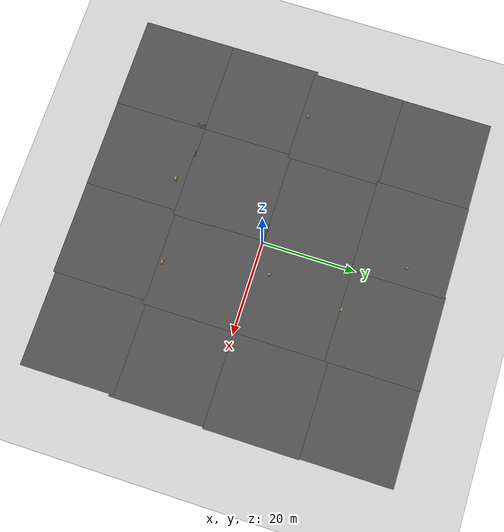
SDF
<sdf version="1.7">
 <world name="default">
  <light name="sun" type="directional">
   <pose>0 0 10 0 -0 0</pose>
   <diffuse>0.8 0.8 0.8 1</diffuse>
   <specular>0.2 0.2 0.2 1</specular>
   <attenuation>
    <range>1000</range>
    <constant>0.9</constant>
    <linear>0.01</linear>
    <quadratic>0.001</quadratic>
   </attenuation>
   <direction>-0.5 0.1 -0.9</direction>
   <spot><inner_angle>0</inner_angle><outer_angle>0</outer_angle><falloff>0</falloff></spot>
  </light>
  <model name="ground_plane">
   <static>1</static>
   <link name="link">
    <collision name="collision">
     <geometry><plane><normal>0 0 1</normal><size>100 100</size></plane></geometry>
     <surface>
      <contact><collide_bitmask>65535</collide_bitmask></contact>
      <friction><ode><mu>100</mu><mu2>50</mu2></ode></friction>
     </surface>
    </collision>
    <visual name="visual">
     <cast_shadows>0</cast_shadows>
     <geometry><plane><normal>0 0 1</normal><size>100 100</size></plane></geometry>
     <material>
      <script><uri>file://media/materials/scripts/gazebo.material</uri><name>Gazebo/Grey</name></script>
     </material>
    </visual>
   </link>
  </model>
  <gravity>0 0 -9.8</gravity>
  <magnetic_field>6e-06 2.3e-05 -4.2e-05</magnetic_field>
  <atmosphere type="adiabatic"/>
  <physics type="ode">
   <max_step_size>0.001</max_step_size>
   <real_time_factor>1</real_time_factor>
   <real_time_update_rate>1000</real_time_update_rate>
  </physics>
  <scene><ambient>0.4 0.4 0.4 1</ambient><background>0.7 0.7 0.7 1</background><shadows>1</shadows></scene>
  <audio><device>default</device></audio>
  <spherical_coordinates>
   <surface_model>EARTH_WGS84</surface_model>
   <latitude_deg>0</latitude_deg>
   <longitude_deg>0</longitude_deg>
   <elevation>0</elevation>
   <heading_deg>0</heading_deg>
  </spherical_coordinates>
  <model name="asphalt_plane">
   <static>1</static>
   <link name="link">
    <collision name="collision"><geometry><box><size>20 20 0.1</size></box></geometry></collision>
    <visual name="visual">
     <cast_shadows>0</cast_shadows>
     <geometry><box><size>20 20 0.1</size></box></geometry>
     <material>
      <script>
       <uri>model://asphalt_plane/materials/scripts</uri>
       <uri>model://asphalt_plane/materials/textures</uri>
       <name>vrc/asphalt</name>
      </script>
     </material>
    </visual>
   </link>
   <pose>-10.1429 10.0672 0 0 -0 0</pose>
  </model>
  <model name="asphalt_plane_0">
   <static>1</static>
   <link name="link">
    <collision name="collision"><geometry><box><size>20 20 0.1</size></box></geometry></collision>
    <visual name="visual">
     <cast_shadows>0</cast_shadows>
     <geometry><box><size>20 20 0.1</size></box></geometry>
     <material>
      <script>
       <uri>model://asphalt_plane/materials/scripts</uri>
       <uri>model://asphalt_plane/materials/textures</uri>
       <name>vrc/asphalt</name>
      </script>
     </material>
    </visual>
   </link>
   <pose>9.66493 10.0332 0 0 -0 0</pose>
  </model>
  <model name="asphalt_plane_1">
   <static>1</static>
   <link name="link">
    <collision name="collision"><geometry><box><size>20 20 0.1</size></box></geometry></collision>
    <visual name="visual">
     <cast_shadows>0</cast_shadows>
     <geometry><box><size>20 20 0.1</size></box></geometry>
     <material>
      <script>
       <uri>model://asphalt_plane/materials/scripts</uri>
       <uri>model://asphalt_plane/materials/textures</uri>
       <name>vrc/asphalt</name>
      </script>
     </material>
    </visual>
   </link>
   <pose>-10.2318 -9.7372 0 0 -0 0</pose>
  </model>
  <model name="asphalt_plane_2">
   <static>1</static>
   <link name="link">
    <collision name="collision"><geometry><box><size>20 20 0.1</size></box></geometry></collision>
    <visual name="visual">
     <cast_shadows>0</cast_shadows>
     <geometry><box><size>20 20 0.1</size></box></geometry>
     <material>
      <script>
       <uri>model://asphalt_plane/materials/scripts</uri>
       <uri>model://asphalt_plane/materials/textures</uri>
       <name>vrc/asphalt</name>
      </script>
     </material>
    </visual>
   </link>
   <pose>9.5567 -9.75813 0 0 -0 0</pose>
  </model>
  <model name="asphalt_plane_2_clone">
   <static>1</static>
   <link name="link">
    <collision name="collision"><geometry><box><size>20 20 0.1</size></box></geometry></collision>
    <visual name="visual">
     <cast_shadows>0</cast_shadows>
     <geometry><box><size>20 20 0.1</size></box></geometry>
     <material>
      <script>
       <uri>model://asphalt_plane/materials/scripts</uri>
       <uri>model://asphalt_plane/materials/textures</uri>
       <name>vrc/asphalt</name>
      </script>
     </material>
    </visual>
   </link>
   <pose>29.5188 10.0517 0 0 -0 0</pose>
  </model>
  <model name="asphalt_plane_2_clone_0">
   <static>1</static>
   <link name="link">
    <collision name="collision"><geometry><box><size>20 20 0.1</size></box></geometry></collision>
    <visual name="visual">
     <cast_shadows>0</cast_shadows>
     <geometry><box><size>20 20 0.1</size></box></geometry>
     <material>
      <script>
       <uri>model://asphalt_plane/materials/scripts</uri>
       <uri>model://asphalt_plane/materials/textures</uri>
       <name>vrc/asphalt</name>
      </script>
     </material>
    </visual>
   </link>
   <pose>29.2013 -9.82994 0 0 -0 0</pose>
  </model>
  <model name="asphalt_plane_2_clone_1">
   <static>1</static>
   <link name="link">
    <collision name="collision"><geometry><box><size>20 20 0.1</size></box></geometry></collision>
    <visual name="visual">
     <cast_shadows>0</cast_shadows>
     <geometry><box><size>20 20 0.1</size></box></geometry>
     <material>
      <script>
       <uri>model://asphalt_plane/materials/scripts</uri>
       <uri>model://asphalt_plane/materials/textures</uri>
       <name>vrc/asphalt</name>
      </script>
     </material>
    </visual>
   </link>
   <pose>29.307 29.2309 0 0 -0 0</pose>
  </model>
  <model name="asphalt_plane_2_clone_2">
   <static>1</static>
   <link name="link">
    <collision name="collision"><geometry><box><size>20 20 0.1</size></box></geometry></collision>
    <visual name="visual">
     <cast_shadows>0</cast_shadows>
     <geometry><box><size>20 20 0.1</size></box></geometry>
     <material>
      <script>
       <uri>model://asphalt_plane/materials/scripts</uri>
       <uri>model://asphalt_plane/materials/textures</uri>
       <name>vrc/asphalt</name>
      </script>
     </material>
    </visual>
   </link>
   <pose>9.53744 29.3086 0 0 -0 0</pose>
  </model>
  <model name="asphalt_plane_2_clone_3">
   <static>1</static>
   <link name="link">
    <collision name="collision"><geometry><box><size>20 20 0.1</size></box></geometry></collision>
    <visual name="visual">
     <cast_shadows>0</cast_shadows>
     <geometry><box><size>20 20 0.1</size></box></geometry>
     <material>
      <script>
       <uri>model://asphalt_plane/materials/scripts</uri>
       <uri>model://asphalt_plane/materials/textures</uri>
       <name>vrc/asphalt</name>
      </script>
     </material>
    </visual>
   </link>
   <pose>-10.0436 29.1286 0 0 -0 0</pose>
  </model>
  <model name="asphalt_plane_2_clone_4">
   <static>1</static>
   <link name="link">
    <collision name="collision"><geometry><box><size>20 20 0.1</size></box></geometry></collision>
    <visual name="visual">
     <cast_shadows>0</cast_shadows>
     <geometry><box><size>20 20 0.1</size></box></geometry>
     <material>
      <script>
       <uri>model://asphalt_plane/materials/scripts</uri>
       <uri>model://asphalt_plane/materials/textures</uri>
       <name>vrc/asphalt</name>
      </script>
     </material>
    </visual>
   </link>
   <pose>-29.4342 29.0409 0 0 -0 0</pose>
  </model>
  <model name="asphalt_plane_2_clone_5">
   <static>1</static>
   <link name="link">
    <collision name="collision"><geometry><box><size>20 20 0.1</size></box></geometry></collision>
    <visual name="visual">
     <cast_shadows>0</cast_shadows>
     <geometry><box><size>20 20 0.1</size></box></geometry>
     <material>
      <script>
       <uri>model://asphalt_plane/materials/scripts</uri>
       <uri>model://asphalt_plane/materials/textures</uri>
       <name>vrc/asphalt</name>
      </script>
     </material>
    </visual>
   </link>
   <pose>-29.4889 9.45059 0 0 -0 0</pose>
  </model>
  <model name="asphalt_plane_2_clone_6">
   <static>1</static>
   <link name="link">
    <collision name="collision"><geometry><box><size>20 20 0.1</size></box></geometry></collision>
    <visual name="visual">
     <cast_shadows>0</cast_shadows>
     <geometry><box><size>20 20 0.1</size></box></geometry>
     <material>
      <script>
       <uri>model://asphalt_plane/materials/scripts</uri>
       <uri>model://asphalt_plane/materials/textures</uri>
       <name>vrc/asphalt</name>
      </script>
     </material>
    </visual>
   </link>
   <pose>-30.2078 -9.94584 0 0 -0 0</pose>
  </model>
  <model name="asphalt_plane_2_clone_7">
   <static>1</static>
   <link name="link">
    <collision name="collision"><geometry><box><size>20 20 0.1</size></box></geometry></collision>
    <visual name="visual">
     <cast_shadows>0</cast_shadows>
     <geometry><box><size>20 20 0.1</size></box></geometry>
     <material>
      <script>
       <uri>model://asphalt_plane/materials/scripts</uri>
       <uri>model://asphalt_plane/materials/textures</uri>
       <name>vrc/asphalt</name>
      </script>
     </material>
    </visual>
   </link>
   <pose>-30.2223 -29.4366 0 0 -0 0</pose>
  </model>
  <model name="asphalt_plane_2_clone_8">
   <static>1</static>
   <link name="link">
    <collision name="collision"><geometry><box><size>20 20 0.1</size></box></geometry></collision>
    <visual name="visual">
     <cast_shadows>0</cast_shadows>
     <geometry><box><size>20 20 0.1</size></box></geometry>
     <material>
      <script>
       <uri>model://asphalt_plane/materials/scripts</uri>
       <uri>model://asphalt_plane/materials/textures</uri>
       <name>vrc/asphalt</name>
      </script>
     </material>
    </visual>
   </link>
   <pose>-11.1212 -29.3948 0 0 -0 0</pose>
  </model>
  <model name="asphalt_plane_2_clone_9">
   <static>1</static>
   <link name="link">
    <collision name="collision"><geometry><box><size>20 20 0.1</size></box></geometry></collision>
    <visual name="visual">
     <cast_shadows>0</cast_shadows>
     <geometry><box><size>20 20 0.1</size></box></geometry>
     <material>
      <script>
       <uri>model://asphalt_plane/materials/scripts</uri>
       <uri>model://asphalt_plane/materials/textures</uri>
       <name>vrc/asphalt</name>
      </script>
     </material>
    </visual>
   </link>
   <pose>8.77622 -29.3589 0 0 -0 0</pose>
  </model>
  <model name="asphalt_plane_2_clone_10">
   <static>1</static>
   <link name="link">
    <collision name="collision"><geometry><box><size>20 20 0.1</size></box></geometry></collision>
    <visual name="visual">
     <cast_shadows>0</cast_shadows>
     <geometry><box><size>20 20 0.1</size></box></geometry>
     <material>
      <script>
       <uri>model://asphalt_plane/materials/scripts</uri>
       <uri>model://asphalt_plane/materials/textures</uri>
       <name>vrc/asphalt</name>
      </script>
     </material>
    </visual>
   </link>
   <pose>28.7222 -28.8999 0 0 -0 0</pose>
  </model>
  <model name="cabinet">
   <static>1</static>
   <link name="cabinet_bottom_plate">
    <inertial>
     <pose>0 0 -1 0 -0 0</pose>
     <inertia><ixx>2.05</ixx><ixy>0</ixy><ixz>0</ixz><iyy>2.05</iyy><iyz>0</iyz><izz>2.05</izz></inertia>
     <mass>25</mass>
    </inertial>
    <collision name="cabinet_bottom_plate_geom">
     <pose>0 0 0.01 0 -0 0</pose>
     <geometry><box><size>0.45 0.45 0.02</size></box></geometry>
    </collision>
    <visual name="cabinet_bottom_plate_geom_visual">
     <pose>0 0 0.01 0 -0 0</pose>
     <geometry><box><size>0.45 0.45 0.02</size></box></geometry>
     <material>
      <script><uri>file://media/materials/scripts/gazebo.material</uri><name>Gazebo/Wood</name></script>
     </material>
    </visual>
    <collision name="cabinet_bottom_plate_geom_cabinet_back_plate">
     <pose>0.235 0 0.51 0 -0 0</pose>
     <geometry><box><size>0.02 0.45 1.02</size></box></geometry>
    </collision>
    <visual name="cabinet_bottom_plate_geom_cabinet_back_plate_visual">
     <pose>0.235 0 0.51 0 -0 0</pose>
     <geometry><box><size>0.02 0.45 1.02</size></box></geometry>
     <material>
      <script><uri>file://media/materials/scripts/gazebo.material</uri><name>Gazebo/Wood</name></script>
     </material>
    </visual>
    <collision name="cabinet_bottom_plate_geom_cabinet_left_plate">
     <pose>0 0.235 0.51 0 -0 0</pose>
     <geometry><box><size>0.45 0.02 1.02</size></box></geometry>
    </collision>
    <visual name="cabinet_bottom_plate_geom_cabinet_left_plate_visual">
     <pose>0 0.235 0.51 0 -0 0</pose>
     <geometry><box><size>0.45 0.02 1.02</size></box></geometry>
     <material>
      <script><uri>file://media/materials/scripts/gazebo.material</uri><name>Gazebo/Wood</name></script>
     </material>
    </visual>
    <collision name="cabinet_bottom_plate_geom_cabinet_middle_plate">
     <pose>0 0 0.51 0 -0 0</pose>
     <geometry><box><size>0.45 0.45 0.02</size></box></geometry>
    </collision>
    <visual name="cabinet_bottom_plate_geom_cabinet_middle_plate_visual">
     <pose>0 0 0.51 0 -0 0</pose>
     <geometry><box><size>0.45 0.45 0.02</size></box></geometry>
     <material>
      <script><uri>file://media/materials/scripts/gazebo.material</uri><name>Gazebo/Wood</name></script>
     </material>
    </visual>
    <collision name="cabinet_bottom_plate_geom_cabinet_right_plate">
     <pose>0 -0.235 0.51 0 -0 0</pose>
     <geometry><box><size>0.45 0.02 1.02</size></box></geometry>
    </collision>
    <visual name="cabinet_bottom_plate_geom_cabinet_right_plate_visual">
     <pose>0 -0.235 0.51 0 -0 0</pose>
     <geometry><box><size>0.45 0.02 1.02</size></box></geometry>
     <material>
      <script><uri>file://media/materials/scripts/gazebo.material</uri><name>Gazebo/Wood</name></script>
     </material>
    </visual>
    <collision name="cabinet_bottom_plate_geom_cabinet_top_plate">
     <pose>0 0 1.01 0 -0 0</pose>
     <geometry><box><size>0.45 0.45 0.02</size></box></geometry>
    </collision>
    <visual name="cabinet_bottom_plate_geom_cabinet_top_plate_visual">
     <pose>0 0 1.01 0 -0 0</pose>
     <geometry><box><size>0.45 0.45 0.02</size></box></geometry>
     <material>
      <script><uri>file://media/materials/scripts/gazebo.material</uri><name>Gazebo/Wood</name></script>
     </material>
    </visual>
   </link>
   <pose>-3.79659 29.9109 0 0 -0 0</pose>
  </model>
  <model name="beer">
   <link name="link">
    <pose>0 0 0.115 0 -0 0</pose>
    <inertial>
     <mass>0.39</mass>
     <inertia><ixx>0.00058</ixx><ixy>0</ixy><ixz>0</ixz><iyy>0.00058</iyy><iyz>0</iyz><izz>0.00019</izz></inertia>
    </inertial>
    <collision name="collision">
     <geometry><cylinder><radius>0.055</radius><length>0.23</length></cylinder></geometry>
    </collision>
    <visual name="visual">
     <geometry><cylinder><radius>0.055</radius><length>0.23</length></cylinder></geometry>
     <material>
      <script>
       <uri>model://beer/materials/scripts</uri>
       <uri>model://beer/materials/textures</uri>
       <name>Beer/Diffuse</name>
      </script>
     </material>
    </visual>
   </link>
   <pose>-19.0994 12.8876 0.050003 1e-05 4.8e-05 -0.000266</pose>
  </model>
  <model name="beer_0">
   <link name="link">
    <pose>0 0 0.115 0 -0 0</pose>
    <inertial>
     <mass>0.39</mass>
     <inertia><ixx>0.00058</ixx><ixy>0</ixy><ixz>0</ixz><iyy>0.00058</iyy><iyz>0</iyz><izz>0.00019</izz></inertia>
    </inertial>
    <collision name="collision">
     <geometry><cylinder><radius>0.055</radius><length>0.23</length></cylinder></geometry>
    </collision>
    <visual name="visual">
     <geometry><cylinder><radius>0.055</radius><length>0.23</length></cylinder></geometry>
     <material>
      <script>
       <uri>model://beer/materials/scripts</uri>
       <uri>model://beer/materials/textures</uri>
       <name>Beer/Diffuse</name>
      </script>
     </material>
    </visual>
   </link>
   <pose>18.749 11.8749 0.049992 -8e-06 3.3e-05 0.001539</pose>
  </model>
  <model name="cabinet_0">
   <static>1</static>
   <link name="cabinet_bottom_plate">
    <inertial>
     <pose>0 0 -1 0 -0 0</pose>
     <inertia><ixx>2.05</ixx><ixy>0</ixy><ixz>0</ixz><iyy>2.05</iyy><iyz>0</iyz><izz>2.05</izz></inertia>
     <mass>25</mass>
    </inertial>
    <collision name="cabinet_bottom_plate_geom">
     <pose>0 0 0.01 0 -0 0</pose>
     <geometry><box><size>0.45 0.45 0.02</size></box></geometry>
    </collision>
    <visual name="cabinet_bottom_plate_geom_visual">
     <pose>0 0 0.01 0 -0 0</pose>
     <geometry><box><size>0.45 0.45 0.02</size></box></geometry>
     <material>
      <script><uri>file://media/materials/scripts/gazebo.material</uri><name>Gazebo/Wood</name></script>
     </material>
    </visual>
    <collision name="cabinet_bottom_plate_geom_cabinet_back_plate">
     <pose>0.235 0 0.51 0 -0 0</pose>
     <geometry><box><size>0.02 0.45 1.02</size></box></geometry>
    </collision>
    <visual name="cabinet_bottom_plate_geom_cabinet_back_plate_visual">
     <pose>0.235 0 0.51 0 -0 0</pose>
     <geometry><box><size>0.02 0.45 1.02</size></box></geometry>
     <material>
      <script><uri>file://media/materials/scripts/gazebo.material</uri><name>Gazebo/Wood</name></script>
     </material>
    </visual>
    <collision name="cabinet_bottom_plate_geom_cabinet_left_plate">
     <pose>0 0.235 0.51 0 -0 0</pose>
     <geometry><box><size>0.45 0.02 1.02</size></box></geometry>
    </collision>
    <visual name="cabinet_bottom_plate_geom_cabinet_left_plate_visual">
     <pose>0 0.235 0.51 0 -0 0</pose>
     <geometry><box><size>0.45 0.02 1.02</size></box></geometry>
     <material>
      <script><uri>file://media/materials/scripts/gazebo.material</uri><name>Gazebo/Wood</name></script>
     </material>
    </visual>
    <collision name="cabinet_bottom_plate_geom_cabinet_middle_plate">
     <pose>0 0 0.51 0 -0 0</pose>
     <geometry><box><size>0.45 0.45 0.02</size></box></geometry>
    </collision>
    <visual name="cabinet_bottom_plate_geom_cabinet_middle_plate_visual">
     <pose>0 0 0.51 0 -0 0</pose>
     <geometry><box><size>0.45 0.45 0.02</size></box></geometry>
     <material>
      <script><uri>file://media/materials/scripts/gazebo.material</uri><name>Gazebo/Wood</name></script>
     </material>
    </visual>
    <collision name="cabinet_bottom_plate_geom_cabinet_right_plate">
     <pose>0 -0.235 0.51 0 -0 0</pose>
     <geometry><box><size>0.45 0.02 1.02</size></box></geometry>
    </collision>
    <visual name="cabinet_bottom_plate_geom_cabinet_right_plate_visual">
     <pose>0 -0.235 0.51 0 -0 0</pose>
     <geometry><box><size>0.45 0.02 1.02</size></box></geometry>
     <material>
      <script><uri>file://media/materials/scripts/gazebo.material</uri><name>Gazebo/Wood</name></script>
     </material>
    </visual>
    <collision name="cabinet_bottom_plate_geom_cabinet_top_plate">
     <pose>0 0 1.01 0 -0 0</pose>
     <geometry><box><size>0.45 0.45 0.02</size></box></geometry>
    </collision>
    <visual name="cabinet_bottom_plate_geom_cabinet_top_plate_visual">
     <pose>0 0 1.01 0 -0 0</pose>
     <geometry><box><size>0.45 0.45 0.02</size></box></geometry>
     <material>
      <script><uri>file://media/materials/scripts/gazebo.material</uri><name>Gazebo/Wood</name></script>
     </material>
    </visual>
   </link>
   <pose>-29.4219 0.950964 0 0 -0 0</pose>
  </model>
  <model name="bookshelf">
   <static>1</static>
   <link name="link">
    <inertial><mass>1</mass></inertial>
    <collision name="back">
     <pose>0 0.005 0.6 0 -0 0</pose>
     <geometry><box><size>0.9 0.01 1.2</size></box></geometry>
    </collision>
    <visual name="visual1">
     <pose>0 0.005 0.6 0 -0 0</pose>
     <geometry><box><size>0.9 0.01 1.2</size></box></geometry>
     <material>
      <script><uri>file://media/materials/scripts/gazebo.material</uri><name>Gazebo/Wood</name></script>
     </material>
    </visual>
    <collision name="left_side">
     <pose>0.45 -0.195 0.6 0 -0 0</pose>
     <geometry><box><size>0.02 0.4 1.2</size></box></geometry>
    </collision>
    <visual name="visual2">
     <pose>0.45 -0.195 0.6 0 -0 0</pose>
     <geometry><box><size>0.02 0.4 1.2</size></box></geometry>
     <material>
      <script><uri>file://media/materials/scripts/gazebo.material</uri><name>Gazebo/Wood</name></script>
     </material>
    </visual>
    <collision name="right_side">
     <pose>-0.45 -0.195 0.6 0 -0 0</pose>
     <geometry><box><size>0.02 0.4 1.2</size></box></geometry>
    </collision>
    <visual name="visual3">
     <pose>-0.45 -0.195 0.6 0 -0 0</pose>
     <geometry><box><size>0.02 0.4 1.2</size></box></geometry>
     <material>
      <script><uri>file://media/materials/scripts/gazebo.material</uri><name>Gazebo/Wood</name></script>
     </material>
    </visual>
    <collision name="bottom">
     <pose>0 -0.195 0.03 0 -0 0</pose>
     <geometry><box><size>0.88 0.4 0.06</size></box></geometry>
    </collision>
    <visual name="visual4">
     <pose>0 -0.195 0.03 0 -0 0</pose>
     <geometry><box><size>0.88 0.4 0.06</size></box></geometry>
     <material>
      <script><uri>file://media/materials/scripts/gazebo.material</uri><name>Gazebo/Wood</name></script>
     </material>
    </visual>
    <collision name="top">
     <pose>0 -0.195 1.19 0 -0 0</pose>
     <geometry><box><size>0.88 0.4 0.02</size></box></geometry>
    </collision>
    <visual name="visual5">
     <pose>0 -0.195 1.19 0 -0 0</pose>
     <geometry><box><size>0.88 0.4 0.02</size></box></geometry>
     <material>
      <script><uri>file://media/materials/scripts/gazebo.material</uri><name>Gazebo/Wood</name></script>
     </material>
    </visual>
    <collision name="low_shelf">
     <pose>0 -0.195 0.43 0 -0 0</pose>
     <geometry><box><size>0.88 0.4 0.02</size></box></geometry>
    </collision>
    <visual name="visual6">
     <pose>0 -0.195 0.43 0 -0 0</pose>
     <geometry><box><size>0.88 0.4 0.02</size></box></geometry>
     <material>
      <script><uri>file://media/materials/scripts/gazebo.material</uri><name>Gazebo/Wood</name></script>
     </material>
    </visual>
    <collision name="high_shelf">
     <pose>0 -0.195 0.8 0 -0 0</pose>
     <geometry><box><size>0.88 0.4 0.02</size></box></geometry>
    </collision>
    <visual name="visual7">
     <pose>0 -0.195 0.8 0 -0 0</pose>
     <geometry><box><size>0.88 0.4 0.02</size></box></geometry>
     <material>
      <script><uri>file://media/materials/scripts/gazebo.material</uri><name>Gazebo/Wood</name></script>
     </material>
    </visual>
   </link>
   <pose>-7.67032 -21.4428 0 0 -0 0</pose>
  </model>
  <model name="bookshelf_0">
   <static>1</static>
   <link name="link">
    <inertial><mass>1</mass></inertial>
    <collision name="back">
     <pose>0 0.005 0.6 0 -0 0</pose>
     <geometry><box><size>0.9 0.01 1.2</size></box></geometry>
    </collision>
    <visual name="visual1">
     <pose>0 0.005 0.6 0 -0 0</pose>
     <geometry><box><size>0.9 0.01 1.2</size></box></geometry>
     <material>
      <script><uri>file://media/materials/scripts/gazebo.material</uri><name>Gazebo/Wood</name></script>
     </material>
    </visual>
    <collision name="left_side">
     <pose>0.45 -0.195 0.6 0 -0 0</pose>
     <geometry><box><size>0.02 0.4 1.2</size></box></geometry>
    </collision>
    <visual name="visual2">
     <pose>0.45 -0.195 0.6 0 -0 0</pose>
     <geometry><box><size>0.02 0.4 1.2</size></box></geometry>
     <material>
      <script><uri>file://media/materials/scripts/gazebo.material</uri><name>Gazebo/Wood</name></script>
     </material>
    </visual>
    <collision name="right_side">
     <pose>-0.45 -0.195 0.6 0 -0 0</pose>
     <geometry><box><size>0.02 0.4 1.2</size></box></geometry>
    </collision>
    <visual name="visual3">
     <pose>-0.45 -0.195 0.6 0 -0 0</pose>
     <geometry><box><size>0.02 0.4 1.2</size></box></geometry>
     <material>
      <script><uri>file://media/materials/scripts/gazebo.material</uri><name>Gazebo/Wood</name></script>
     </material>
    </visual>
    <collision name="bottom">
     <pose>0 -0.195 0.03 0 -0 0</pose>
     <geometry><box><size>0.88 0.4 0.06</size></box></geometry>
    </collision>
    <visual name="visual4">
     <pose>0 -0.195 0.03 0 -0 0</pose>
     <geometry><box><size>0.88 0.4 0.06</size></box></geometry>
     <material>
      <script><uri>file://media/materials/scripts/gazebo.material</uri><name>Gazebo/Wood</name></script>
     </material>
    </visual>
    <collision name="top">
     <pose>0 -0.195 1.19 0 -0 0</pose>
     <geometry><box><size>0.88 0.4 0.02</size></box></geometry>
    </collision>
    <visual name="visual5">
     <pose>0 -0.195 1.19 0 -0 0</pose>
     <geometry><box><size>0.88 0.4 0.02</size></box></geometry>
     <material>
      <script><uri>file://media/materials/scripts/gazebo.material</uri><name>Gazebo/Wood</name></script>
     </material>
    </visual>
    <collision name="low_shelf">
     <pose>0 -0.195 0.43 0 -0 0</pose>
     <geometry><box><size>0.88 0.4 0.02</size></box></geometry>
    </collision>
    <visual name="visual6">
     <pose>0 -0.195 0.43 0 -0 0</pose>
     <geometry><box><size>0.88 0.4 0.02</size></box></geometry>
     <material>
      <script><uri>file://media/materials/scripts/gazebo.material</uri><name>Gazebo/Wood</name></script>
     </material>
    </visual>
    <collision name="high_shelf">
     <pose>0 -0.195 0.8 0 -0 0</pose>
     <geometry><box><size>0.88 0.4 0.02</size></box></geometry>
    </collision>
    <visual name="visual7">
     <pose>0 -0.195 0.8 0 -0 0</pose>
     <geometry><box><size>0.88 0.4 0.02</size></box></geometry>
     <material>
      <script><uri>file://media/materials/scripts/gazebo.material</uri><name>Gazebo/Wood</name></script>
     </material>
    </visual>
   </link>
   <pose>10.1597 -18.2941 0 0 -0 0</pose>
  </model>
  <model name="bookshelf_1">
   <static>1</static>
   <link name="link">
    <inertial><mass>1</mass></inertial>
    <collision name="back">
     <pose>0 0.005 0.6 0 -0 0</pose>
     <geometry><box><size>0.9 0.01 1.2</size></box></geometry>
    </collision>
    <visual name="visual1">
     <pose>0 0.005 0.6 0 -0 0</pose>
     <geometry><box><size>0.9 0.01 1.2</size></box></geometry>
     <material>
      <script><uri>file://media/materials/scripts/gazebo.material</uri><name>Gazebo/Wood</name></script>
     </material>
    </visual>
    <collision name="left_side">
     <pose>0.45 -0.195 0.6 0 -0 0</pose>
     <geometry><box><size>0.02 0.4 1.2</size></box></geometry>
    </collision>
    <visual name="visual2">
     <pose>0.45 -0.195 0.6 0 -0 0</pose>
     <geometry><box><size>0.02 0.4 1.2</size></box></geometry>
     <material>
      <script><uri>file://media/materials/scripts/gazebo.material</uri><name>Gazebo/Wood</name></script>
     </material>
    </visual>
    <collision name="right_side">
     <pose>-0.45 -0.195 0.6 0 -0 0</pose>
     <geometry><box><size>0.02 0.4 1.2</size></box></geometry>
    </collision>
    <visual name="visual3">
     <pose>-0.45 -0.195 0.6 0 -0 0</pose>
     <geometry><box><size>0.02 0.4 1.2</size></box></geometry>
     <material>
      <script><uri>file://media/materials/scripts/gazebo.material</uri><name>Gazebo/Wood</name></script>
     </material>
    </visual>
    <collision name="bottom">
     <pose>0 -0.195 0.03 0 -0 0</pose>
     <geometry><box><size>0.88 0.4 0.06</size></box></geometry>
    </collision>
    <visual name="visual4">
     <pose>0 -0.195 0.03 0 -0 0</pose>
     <geometry><box><size>0.88 0.4 0.06</size></box></geometry>
     <material>
      <script><uri>file://media/materials/scripts/gazebo.material</uri><name>Gazebo/Wood</name></script>
     </material>
    </visual>
    <collision name="top">
     <pose>0 -0.195 1.19 0 -0 0</pose>
     <geometry><box><size>0.88 0.4 0.02</size></box></geometry>
    </collision>
    <visual name="visual5">
     <pose>0 -0.195 1.19 0 -0 0</pose>
     <geometry><box><size>0.88 0.4 0.02</size></box></geometry>
     <material>
      <script><uri>file://media/materials/scripts/gazebo.material</uri><name>Gazebo/Wood</name></script>
     </material>
    </visual>
    <collision name="low_shelf">
     <pose>0 -0.195 0.43 0 -0 0</pose>
     <geometry><box><size>0.88 0.4 0.02</size></box></geometry>
    </collision>
    <visual name="visual6">
     <pose>0 -0.195 0.43 0 -0 0</pose>
     <geometry><box><size>0.88 0.4 0.02</size></box></geometry>
     <material>
      <script><uri>file://media/materials/scripts/gazebo.material</uri><name>Gazebo/Wood</name></script>
     </material>
    </visual>
    <collision name="high_shelf">
     <pose>0 -0.195 0.8 0 -0 0</pose>
     <geometry><box><size>0.88 0.4 0.02</size></box></geometry>
    </collision>
    <visual name="visual7">
     <pose>0 -0.195 0.8 0 -0 0</pose>
     <geometry><box><size>0.88 0.4 0.02</size></box></geometry>
     <material>
      <script><uri>file://media/materials/scripts/gazebo.material</uri><name>Gazebo/Wood</name></script>
     </material>
    </visual>
   </link>
   <pose>8.50514 19.7672 0 0 -0 0</pose>
  </model>
  <model name="cabinet_1">
   <static>1</static>
   <link name="cabinet_bottom_plate">
    <inertial>
     <pose>0 0 -1 0 -0 0</pose>
     <inertia><ixx>2.05</ixx><ixy>0</ixy><ixz>0</ixz><iyy>2.05</iyy><iyz>0</iyz><izz>2.05</izz></inertia>
     <mass>25</mass>
    </inertial>
    <collision name="cabinet_bottom_plate_geom">
     <pose>0 0 0.01 0 -0 0</pose>
     <geometry><box><size>0.45 0.45 0.02</size></box></geometry>
    </collision>
    <visual name="cabinet_bottom_plate_geom_visual">
     <pose>0 0 0.01 0 -0 0</pose>
     <geometry><box><size>0.45 0.45 0.02</size></box></geometry>
     <material>
      <script><uri>file://media/materials/scripts/gazebo.material</uri><name>Gazebo/Wood</name></script>
     </material>
    </visual>
    <collision name="cabinet_bottom_plate_geom_cabinet_back_plate">
     <pose>0.235 0 0.51 0 -0 0</pose>
     <geometry><box><size>0.02 0.45 1.02</size></box></geometry>
    </collision>
    <visual name="cabinet_bottom_plate_geom_cabinet_back_plate_visual">
     <pose>0.235 0 0.51 0 -0 0</pose>
     <geometry><box><size>0.02 0.45 1.02</size></box></geometry>
     <material>
      <script><uri>file://media/materials/scripts/gazebo.material</uri><name>Gazebo/Wood</name></script>
     </material>
    </visual>
    <collision name="cabinet_bottom_plate_geom_cabinet_left_plate">
     <pose>0 0.235 0.51 0 -0 0</pose>
     <geometry><box><size>0.45 0.02 1.02</size></box></geometry>
    </collision>
    <visual name="cabinet_bottom_plate_geom_cabinet_left_plate_visual">
     <pose>0 0.235 0.51 0 -0 0</pose>
     <geometry><box><size>0.45 0.02 1.02</size></box></geometry>
     <material>
      <script><uri>file://media/materials/scripts/gazebo.material</uri><name>Gazebo/Wood</name></script>
     </material>
    </visual>
    <collision name="cabinet_bottom_plate_geom_cabinet_middle_plate">
     <pose>0 0 0.51 0 -0 0</pose>
     <geometry><box><size>0.45 0.45 0.02</size></box></geometry>
    </collision>
    <visual name="cabinet_bottom_plate_geom_cabinet_middle_plate_visual">
     <pose>0 0 0.51 0 -0 0</pose>
     <geometry><box><size>0.45 0.45 0.02</size></box></geometry>
     <material>
      <script><uri>file://media/materials/scripts/gazebo.material</uri><name>Gazebo/Wood</name></script>
     </material>
    </visual>
    <collision name="cabinet_bottom_plate_geom_cabinet_right_plate">
     <pose>0 -0.235 0.51 0 -0 0</pose>
     <geometry><box><size>0.45 0.02 1.02</size></box></geometry>
    </collision>
    <visual name="cabinet_bottom_plate_geom_cabinet_right_plate_visual">
     <pose>0 -0.235 0.51 0 -0 0</pose>
     <geometry><box><size>0.45 0.02 1.02</size></box></geometry>
     <material>
      <script><uri>file://media/materials/scripts/gazebo.material</uri><name>Gazebo/Wood</name></script>
     </material>
    </visual>
    <collision name="cabinet_bottom_plate_geom_cabinet_top_plate">
     <pose>0 0 1.01 0 -0 0</pose>
     <geometry><box><size>0.45 0.45 0.02</size></box></geometry>
    </collision>
    <visual name="cabinet_bottom_plate_geom_cabinet_top_plate_visual">
     <pose>0 0 1.01 0 -0 0</pose>
     <geometry><box><size>0.45 0.45 0.02</size></box></geometry>
     <material>
      <script><uri>file://media/materials/scripts/gazebo.material</uri><name>Gazebo/Wood</name></script>
     </material>
    </visual>
   </link>
   <pose>6.00167 3.40119 0 0 -0 0</pose>
  </model>
 </world>
</sdf>
